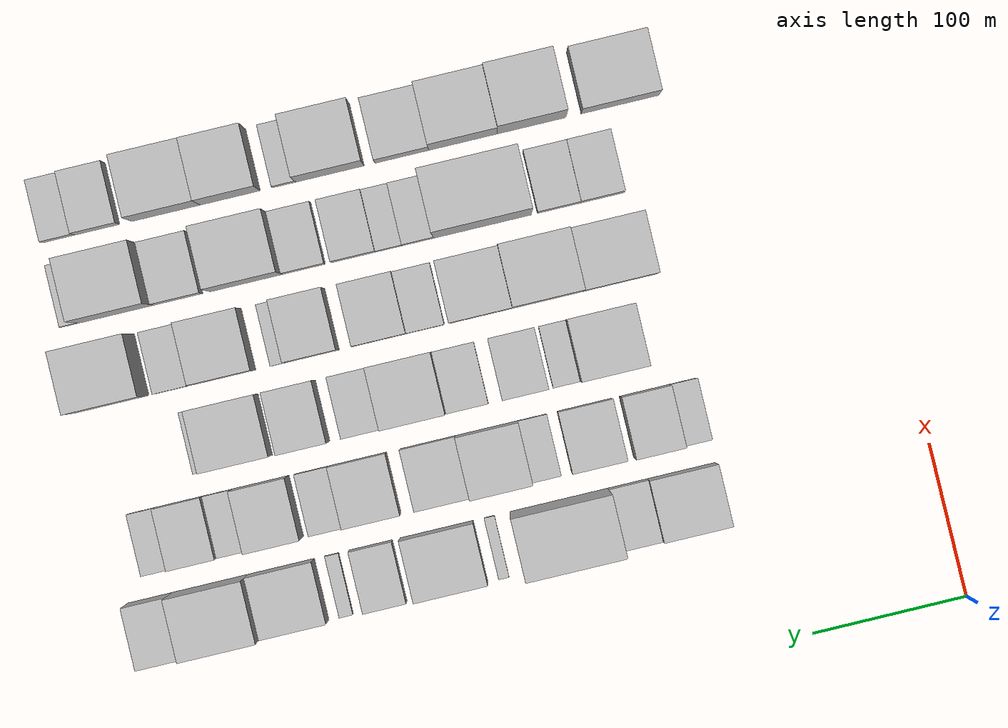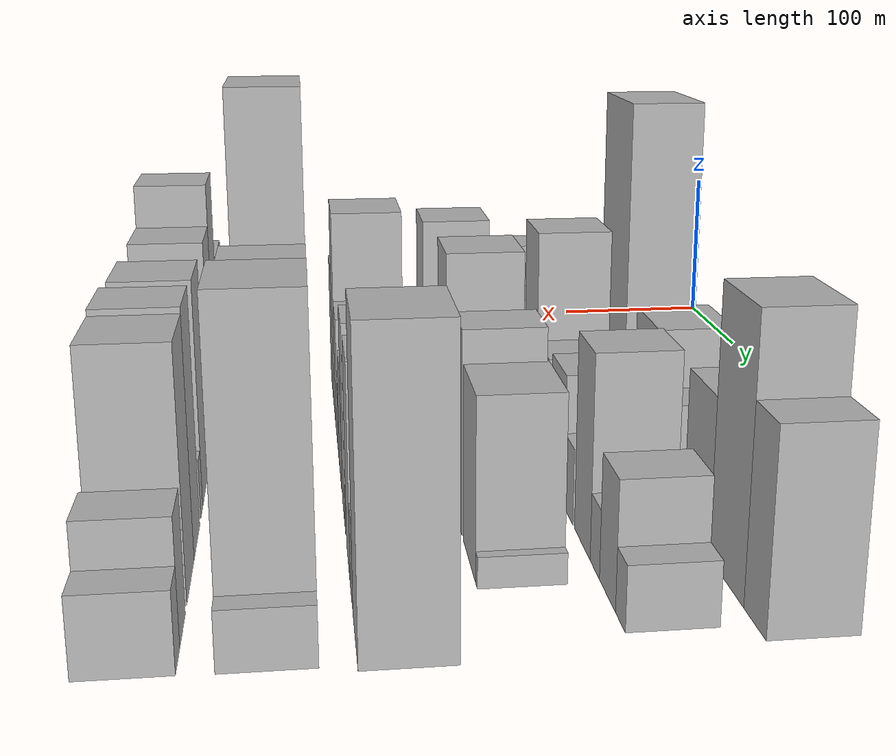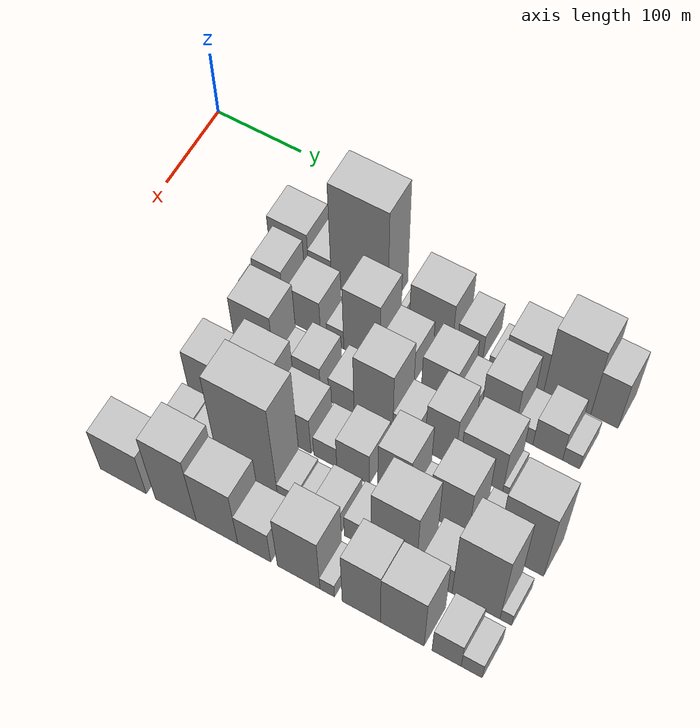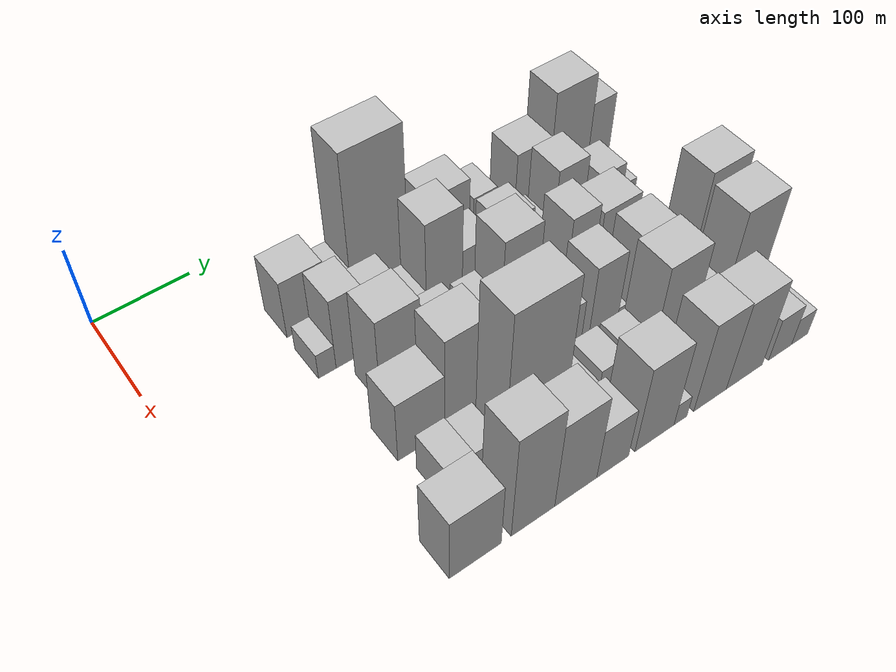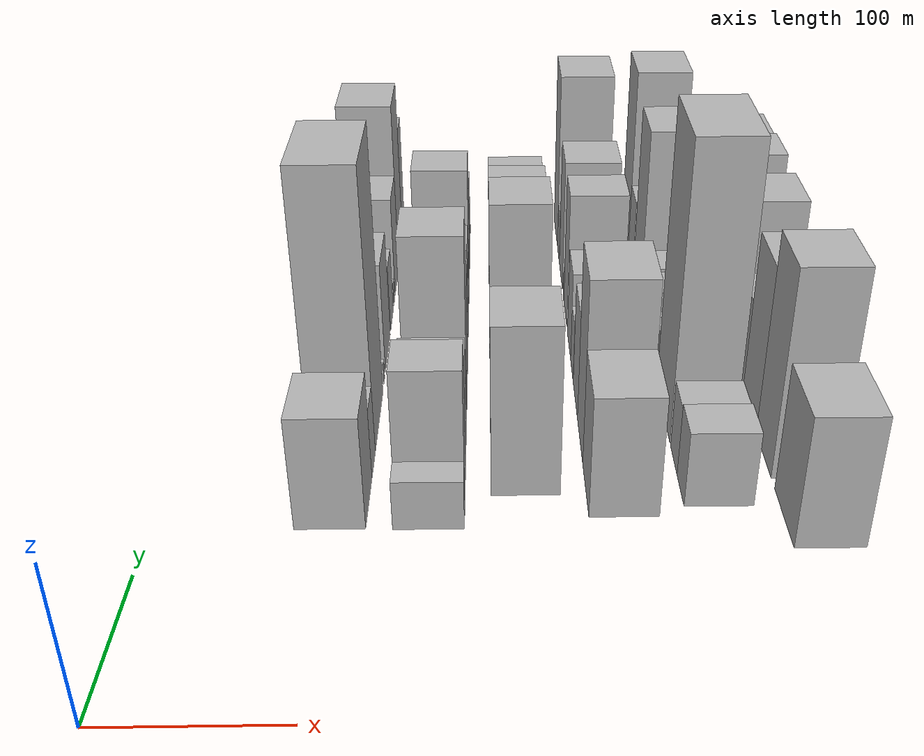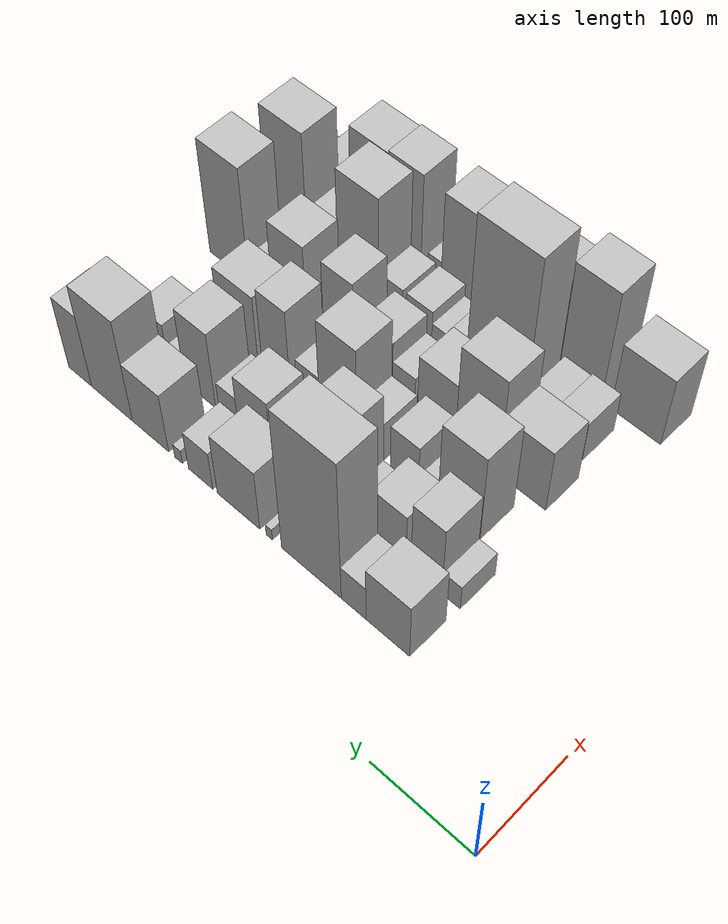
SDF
<sdf version="1.6">
 <world name="default">
  <model name="building_31">
   <static>1</static>
   <pose>100.0000 157.6466 0 0.000000 0.000000 0.000000</pose>
   <link name="link">
    <pose>0 0 37.50 0 0 0</pose>
    <collision name="collision"><geometry><box><size>40.0000 44.5112 75.0000</size></box></geometry></collision>
    <visual name="visual">
     <cast_shadows>0</cast_shadows>
     <geometry><box><size>40.0000 44.5112 75.0000</size></box></geometry>
     <material>
      <script>
       <uri>model://HANNAS_wall/materials/scripts</uri>
       <uri>model://HANNAS_wall/materials/textures</uri>
       <name>vrc/HANNAS_wall</name>
      </script>
     </material>
    </visual>
   </link>
  </model>
  <model name="building_32">
   <static>1</static>
   <pose>100.0000 192.7787 0 0.000000 0.000000 0.000000</pose>
   <link name="link">
    <pose>0 0 24.00 0 0 0</pose>
    <collision name="collision"><geometry><box><size>40.0000 25.7529 48.0000</size></box></geometry></collision>
    <visual name="visual">
     <cast_shadows>0</cast_shadows>
     <geometry><box><size>40.0000 25.7529 48.0000</size></box></geometry>
     <material>
      <script>
       <uri>model://HANNAS_wall/materials/scripts</uri>
       <uri>model://HANNAS_wall/materials/textures</uri>
       <name>vrc/HANNAS_wall</name>
      </script>
     </material>
    </visual>
   </link>
  </model>
  <model name="building_33">
   <static>1</static>
   <pose>100.0000 237.5757 0 0.000000 0.000000 0.000000</pose>
   <link name="link">
    <pose>0 0 94.50 0 0 0</pose>
    <collision name="collision"><geometry><box><size>40.0000 63.8411 189.0000</size></box></geometry></collision>
    <visual name="visual">
     <cast_shadows>0</cast_shadows>
     <geometry><box><size>40.0000 63.8411 189.0000</size></box></geometry>
     <material>
      <script>
       <uri>model://HANNAS_wall/materials/scripts</uri>
       <uri>model://HANNAS_wall/materials/textures</uri>
       <name>vrc/HANNAS_wall</name>
      </script>
     </material>
    </visual>
   </link>
  </model>
  <model name="building_34">
   <static>1</static>
   <pose>100.0000 282.9036 0 0.000000 0.000000 0.000000</pose>
   <link name="link">
    <pose>0 0 7.50 0 0 0</pose>
    <collision name="collision"><geometry><box><size>40.0000 6.8147 15.0000</size></box></geometry></collision>
    <visual name="visual">
     <cast_shadows>0</cast_shadows>
     <geometry><box><size>40.0000 6.8147 15.0000</size></box></geometry>
     <material>
      <script>
       <uri>model://HANNAS_wall/materials/scripts</uri>
       <uri>model://HANNAS_wall/materials/textures</uri>
       <name>vrc/HANNAS_wall</name>
      </script>
     </material>
    </visual>
   </link>
  </model>
  <model name="building_35">
   <static>1</static>
   <pose>100.0000 317.2166 0 0.000000 0.000000 0.000000</pose>
   <link name="link">
    <pose>0 0 40.50 0 0 0</pose>
    <collision name="collision"><geometry><box><size>40.0000 47.8113 81.0000</size></box></geometry></collision>
    <visual name="visual">
     <cast_shadows>0</cast_shadows>
     <geometry><box><size>40.0000 47.8113 81.0000</size></box></geometry>
     <material>
      <script>
       <uri>model://HANNAS_wall/materials/scripts</uri>
       <uri>model://HANNAS_wall/materials/textures</uri>
       <name>vrc/HANNAS_wall</name>
      </script>
     </material>
    </visual>
   </link>
  </model>
  <model name="building_36">
   <static>1</static>
   <pose>100.0000 360.1481 0 0.000000 0.000000 0.000000</pose>
   <link name="link">
    <pose>0 0 25.50 0 0 0</pose>
    <collision name="collision"><geometry><box><size>40.0000 28.0517 51.0000</size></box></geometry></collision>
    <visual name="visual">
     <cast_shadows>0</cast_shadows>
     <geometry><box><size>40.0000 28.0517 51.0000</size></box></geometry>
     <material>
      <script>
       <uri>model://HANNAS_wall/materials/scripts</uri>
       <uri>model://HANNAS_wall/materials/textures</uri>
       <name>vrc/HANNAS_wall</name>
      </script>
     </material>
    </visual>
   </link>
  </model>
  <model name="building_37">
   <static>1</static>
   <pose>100.0000 385.6458 0 0.000000 0.000000 0.000000</pose>
   <link name="link">
    <pose>0 0 9.00 0 0 0</pose>
    <collision name="collision"><geometry><box><size>40.0000 8.9437 18.0000</size></box></geometry></collision>
    <visual name="visual">
     <cast_shadows>0</cast_shadows>
     <geometry><box><size>40.0000 8.9437 18.0000</size></box></geometry>
     <material>
      <script>
       <uri>model://HANNAS_wall/materials/scripts</uri>
       <uri>model://HANNAS_wall/materials/textures</uri>
       <name>vrc/HANNAS_wall</name>
      </script>
     </material>
    </visual>
   </link>
  </model>
  <model name="building_38">
   <static>1</static>
   <pose>100.0000 418.6927 0 0.000000 0.000000 0.000000</pose>
   <link name="link">
    <pose>0 0 39.00 0 0 0</pose>
    <collision name="collision"><geometry><box><size>40.0000 43.1501 78.0000</size></box></geometry></collision>
    <visual name="visual">
     <cast_shadows>0</cast_shadows>
     <geometry><box><size>40.0000 43.1501 78.0000</size></box></geometry>
     <material>
      <script>
       <uri>model://HANNAS_wall/materials/scripts</uri>
       <uri>model://HANNAS_wall/materials/textures</uri>
       <name>vrc/HANNAS_wall</name>
      </script>
     </material>
    </visual>
   </link>
  </model>
  <model name="building_39">
   <static>1</static>
   <pose>100.0000 465.1550 0 0.000000 0.000000 0.000000</pose>
   <link name="link">
    <pose>0 0 66.00 0 0 0</pose>
    <collision name="collision"><geometry><box><size>40.0000 49.7746 132.0000</size></box></geometry></collision>
    <visual name="visual">
     <cast_shadows>0</cast_shadows>
     <geometry><box><size>40.0000 49.7746 132.0000</size></box></geometry>
     <material>
      <script>
       <uri>model://HANNAS_wall/materials/scripts</uri>
       <uri>model://HANNAS_wall/materials/textures</uri>
       <name>vrc/HANNAS_wall</name>
      </script>
     </material>
    </visual>
   </link>
  </model>
  <model name="building_40">
   <static>1</static>
   <pose>100.0000 504.3704 0 0.000000 0.000000 0.000000</pose>
   <link name="link">
    <pose>0 0 46.50 0 0 0</pose>
    <collision name="collision"><geometry><box><size>40.0000 28.6561 93.0000</size></box></geometry></collision>
    <visual name="visual">
     <cast_shadows>0</cast_shadows>
     <geometry><box><size>40.0000 28.6561 93.0000</size></box></geometry>
     <material>
      <script>
       <uri>model://HANNAS_wall/materials/scripts</uri>
       <uri>model://HANNAS_wall/materials/textures</uri>
       <name>vrc/HANNAS_wall</name>
      </script>
     </material>
    </visual>
   </link>
  </model>
  <model name="building_85">
   <static>1</static>
   <pose>155.0000 143.6181 0 0.000000 0.000000 0.000000</pose>
   <link name="link">
    <pose>0 0 16.50 0 0 0</pose>
    <collision name="collision"><geometry><box><size>40.0000 18.3962 33.0000</size></box></geometry></collision>
    <visual name="visual">
     <cast_shadows>0</cast_shadows>
     <geometry><box><size>40.0000 18.3962 33.0000</size></box></geometry>
     <material>
      <script>
       <uri>model://HANNAS_wall/materials/scripts</uri>
       <uri>model://HANNAS_wall/materials/textures</uri>
       <name>vrc/HANNAS_wall</name>
      </script>
     </material>
    </visual>
   </link>
  </model>
  <model name="building_86">
   <static>1</static>
   <pose>155.0000 168.8673 0 0.000000 0.000000 0.000000</pose>
   <link name="link">
    <pose>0 0 46.50 0 0 0</pose>
    <collision name="collision"><geometry><box><size>40.0000 32.1022 93.0000</size></box></geometry></collision>
    <visual name="visual">
     <cast_shadows>0</cast_shadows>
     <geometry><box><size>40.0000 32.1022 93.0000</size></box></geometry>
     <material>
      <script>
       <uri>model://HANNAS_wall/materials/scripts</uri>
       <uri>model://HANNAS_wall/materials/textures</uri>
       <name>vrc/HANNAS_wall</name>
      </script>
     </material>
    </visual>
   </link>
  </model>
  <model name="building_87">
   <static>1</static>
   <pose>155.0000 207.7030 0 0.000000 0.000000 0.000000</pose>
   <link name="link">
    <pose>0 0 34.50 0 0 0</pose>
    <collision name="collision"><geometry><box><size>40.0000 35.5692 69.0000</size></box></geometry></collision>
    <visual name="visual">
     <cast_shadows>0</cast_shadows>
     <geometry><box><size>40.0000 35.5692 69.0000</size></box></geometry>
     <material>
      <script>
       <uri>model://HANNAS_wall/materials/scripts</uri>
       <uri>model://HANNAS_wall/materials/textures</uri>
       <name>vrc/HANNAS_wall</name>
      </script>
     </material>
    </visual>
   </link>
  </model>
  <model name="building_88">
   <static>1</static>
   <pose>155.0000 241.8715 0 0.000000 0.000000 0.000000</pose>
   <link name="link">
    <pose>0 0 18.00 0 0 0</pose>
    <collision name="collision"><geometry><box><size>40.0000 18.7679 36.0000</size></box></geometry></collision>
    <visual name="visual">
     <cast_shadows>0</cast_shadows>
     <geometry><box><size>40.0000 18.7679 36.0000</size></box></geometry>
     <material>
      <script>
       <uri>model://HANNAS_wall/materials/scripts</uri>
       <uri>model://HANNAS_wall/materials/textures</uri>
       <name>vrc/HANNAS_wall</name>
      </script>
     </material>
    </visual>
   </link>
  </model>
  <model name="building_89">
   <static>1</static>
   <pose>155.0000 271.4831 0 0.000000 0.000000 0.000000</pose>
   <link name="link">
    <pose>0 0 61.50 0 0 0</pose>
    <collision name="collision"><geometry><box><size>40.0000 40.4552 123.0000</size></box></geometry></collision>
    <visual name="visual">
     <cast_shadows>0</cast_shadows>
     <geometry><box><size>40.0000 40.4552 123.0000</size></box></geometry>
     <material>
      <script>
       <uri>model://HANNAS_wall/materials/scripts</uri>
       <uri>model://HANNAS_wall/materials/textures</uri>
       <name>vrc/HANNAS_wall</name>
      </script>
     </material>
    </visual>
   </link>
  </model>
  <model name="building_90">
   <static>1</static>
   <pose>155.0000 309.7545 0 0.000000 0.000000 0.000000</pose>
   <link name="link">
    <pose>0 0 31.50 0 0 0</pose>
    <collision name="collision"><geometry><box><size>40.0000 36.0877 63.0000</size></box></geometry></collision>
    <visual name="visual">
     <cast_shadows>0</cast_shadows>
     <geometry><box><size>40.0000 36.0877 63.0000</size></box></geometry>
     <material>
      <script>
       <uri>model://HANNAS_wall/materials/scripts</uri>
       <uri>model://HANNAS_wall/materials/textures</uri>
       <name>vrc/HANNAS_wall</name>
      </script>
     </material>
    </visual>
   </link>
  </model>
  <model name="building_91">
   <static>1</static>
   <pose>155.0000 355.5986 0 0.000000 0.000000 0.000000</pose>
   <link name="link">
    <pose>0 0 34.50 0 0 0</pose>
    <collision name="collision"><geometry><box><size>40.0000 37.6006 69.0000</size></box></geometry></collision>
    <visual name="visual">
     <cast_shadows>0</cast_shadows>
     <geometry><box><size>40.0000 37.6006 69.0000</size></box></geometry>
     <material>
      <script>
       <uri>model://HANNAS_wall/materials/scripts</uri>
       <uri>model://HANNAS_wall/materials/textures</uri>
       <name>vrc/HANNAS_wall</name>
      </script>
     </material>
    </visual>
   </link>
  </model>
  <model name="building_92">
   <static>1</static>
   <pose>155.0000 385.4392 0 0.000000 0.000000 0.000000</pose>
   <link name="link">
    <pose>0 0 19.50 0 0 0</pose>
    <collision name="collision"><geometry><box><size>40.0000 22.0804 39.0000</size></box></geometry></collision>
    <visual name="visual">
     <cast_shadows>0</cast_shadows>
     <geometry><box><size>40.0000 22.0804 39.0000</size></box></geometry>
     <material>
      <script>
       <uri>model://HANNAS_wall/materials/scripts</uri>
       <uri>model://HANNAS_wall/materials/textures</uri>
       <name>vrc/HANNAS_wall</name>
      </script>
     </material>
    </visual>
   </link>
  </model>
  <model name="building_93">
   <static>1</static>
   <pose>155.0000 418.6025 0 0.000000 0.000000 0.000000</pose>
   <link name="link">
    <pose>0 0 49.50 0 0 0</pose>
    <collision name="collision"><geometry><box><size>40.0000 36.2463 99.0000</size></box></geometry></collision>
    <visual name="visual">
     <cast_shadows>0</cast_shadows>
     <geometry><box><size>40.0000 36.2463 99.0000</size></box></geometry>
     <material>
      <script>
       <uri>model://HANNAS_wall/materials/scripts</uri>
       <uri>model://HANNAS_wall/materials/textures</uri>
       <name>vrc/HANNAS_wall</name>
      </script>
     </material>
    </visual>
   </link>
  </model>
  <model name="building_94">
   <static>1</static>
   <pose>155.0000 446.5199 0 0.000000 0.000000 0.000000</pose>
   <link name="link">
    <pose>0 0 16.50 0 0 0</pose>
    <collision name="collision"><geometry><box><size>40.0000 19.5885 33.0000</size></box></geometry></collision>
    <visual name="visual">
     <cast_shadows>0</cast_shadows>
     <geometry><box><size>40.0000 19.5885 33.0000</size></box></geometry>
     <material>
      <script>
       <uri>model://HANNAS_wall/materials/scripts</uri>
       <uri>model://HANNAS_wall/materials/textures</uri>
       <name>vrc/HANNAS_wall</name>
      </script>
     </material>
    </visual>
   </link>
  </model>
  <model name="building_95">
   <static>1</static>
   <pose>155.0000 471.9669 0 0.000000 0.000000 0.000000</pose>
   <link name="link">
    <pose>0 0 30.00 0 0 0</pose>
    <collision name="collision"><geometry><box><size>40.0000 31.3054 60.0000</size></box></geometry></collision>
    <visual name="visual">
     <cast_shadows>0</cast_shadows>
     <geometry><box><size>40.0000 31.3054 60.0000</size></box></geometry>
     <material>
      <script>
       <uri>model://HANNAS_wall/materials/scripts</uri>
       <uri>model://HANNAS_wall/materials/textures</uri>
       <name>vrc/HANNAS_wall</name>
      </script>
     </material>
    </visual>
   </link>
  </model>
  <model name="building_96">
   <static>1</static>
   <pose>155.0000 496.5159 0 0.000000 0.000000 0.000000</pose>
   <link name="link">
    <pose>0 0 15.00 0 0 0</pose>
    <collision name="collision"><geometry><box><size>40.0000 17.7927 30.0000</size></box></geometry></collision>
    <visual name="visual">
     <cast_shadows>0</cast_shadows>
     <geometry><box><size>40.0000 17.7927 30.0000</size></box></geometry>
     <material>
      <script>
       <uri>model://HANNAS_wall/materials/scripts</uri>
       <uri>model://HANNAS_wall/materials/textures</uri>
       <name>vrc/HANNAS_wall</name>
      </script>
     </material>
    </visual>
   </link>
  </model>
  <model name="building_138">
   <static>1</static>
   <pose>210.0000 185.1023 0 0.000000 0.000000 0.000000</pose>
   <link name="link">
    <pose>0 0 57.00 0 0 0</pose>
    <collision name="collision"><geometry><box><size>40.0000 43.8802 114.0000</size></box></geometry></collision>
    <visual name="visual">
     <cast_shadows>0</cast_shadows>
     <geometry><box><size>40.0000 43.8802 114.0000</size></box></geometry>
     <material>
      <script>
       <uri>model://HANNAS_wall/materials/scripts</uri>
       <uri>model://HANNAS_wall/materials/textures</uri>
       <name>vrc/HANNAS_wall</name>
      </script>
     </material>
    </visual>
   </link>
  </model>
  <model name="building_139">
   <static>1</static>
   <pose>210.0000 215.8155 0 0.000000 0.000000 0.000000</pose>
   <link name="link">
    <pose>0 0 15.00 0 0 0</pose>
    <collision name="collision"><geometry><box><size>40.0000 17.5463 30.0000</size></box></geometry></collision>
    <visual name="visual">
     <cast_shadows>0</cast_shadows>
     <geometry><box><size>40.0000 17.5463 30.0000</size></box></geometry>
     <material>
      <script>
       <uri>model://HANNAS_wall/materials/scripts</uri>
       <uri>model://HANNAS_wall/materials/textures</uri>
       <name>vrc/HANNAS_wall</name>
      </script>
     </material>
    </visual>
   </link>
  </model>
  <model name="building_140">
   <static>1</static>
   <pose>210.0000 242.6481 0 0.000000 0.000000 0.000000</pose>
   <link name="link">
    <pose>0 0 30.00 0 0 0</pose>
    <collision name="collision"><geometry><box><size>40.0000 30.1188 60.0000</size></box></geometry></collision>
    <visual name="visual">
     <cast_shadows>0</cast_shadows>
     <geometry><box><size>40.0000 30.1188 60.0000</size></box></geometry>
     <material>
      <script>
       <uri>model://HANNAS_wall/materials/scripts</uri>
       <uri>model://HANNAS_wall/materials/textures</uri>
       <name>vrc/HANNAS_wall</name>
      </script>
     </material>
    </visual>
   </link>
  </model>
  <model name="building_141">
   <static>1</static>
   <pose>210.0000 280.3949 0 0.000000 0.000000 0.000000</pose>
   <link name="link">
    <pose>0 0 25.50 0 0 0</pose>
    <collision name="collision"><geometry><box><size>40.0000 27.3748 51.0000</size></box></geometry></collision>
    <visual name="visual">
     <cast_shadows>0</cast_shadows>
     <geometry><box><size>40.0000 27.3748 51.0000</size></box></geometry>
     <material>
      <script>
       <uri>model://HANNAS_wall/materials/scripts</uri>
       <uri>model://HANNAS_wall/materials/textures</uri>
       <name>vrc/HANNAS_wall</name>
      </script>
     </material>
    </visual>
   </link>
  </model>
  <model name="building_142">
   <static>1</static>
   <pose>210.0000 315.1085 0 0.000000 0.000000 0.000000</pose>
   <link name="link">
    <pose>0 0 61.50 0 0 0</pose>
    <collision name="collision"><geometry><box><size>40.0000 42.0525 123.0000</size></box></geometry></collision>
    <visual name="visual">
     <cast_shadows>0</cast_shadows>
     <geometry><box><size>40.0000 42.0525 123.0000</size></box></geometry>
     <material>
      <script>
       <uri>model://HANNAS_wall/materials/scripts</uri>
       <uri>model://HANNAS_wall/materials/textures</uri>
       <name>vrc/HANNAS_wall</name>
      </script>
     </material>
    </visual>
   </link>
  </model>
  <model name="building_143">
   <static>1</static>
   <pose>210.0000 349.1474 0 0.000000 0.000000 0.000000</pose>
   <link name="link">
    <pose>0 0 24.00 0 0 0</pose>
    <collision name="collision"><geometry><box><size>40.0000 26.0253 48.0000</size></box></geometry></collision>
    <visual name="visual">
     <cast_shadows>0</cast_shadows>
     <geometry><box><size>40.0000 26.0253 48.0000</size></box></geometry>
     <material>
      <script>
       <uri>model://HANNAS_wall/materials/scripts</uri>
       <uri>model://HANNAS_wall/materials/textures</uri>
       <name>vrc/HANNAS_wall</name>
      </script>
     </material>
    </visual>
   </link>
  </model>
  <model name="building_144">
   <static>1</static>
   <pose>210.0000 386.3830 0 0.000000 0.000000 0.000000</pose>
   <link name="link">
    <pose>0 0 51.00 0 0 0</pose>
    <collision name="collision"><geometry><box><size>40.0000 32.4458 102.0000</size></box></geometry></collision>
    <visual name="visual">
     <cast_shadows>0</cast_shadows>
     <geometry><box><size>40.0000 32.4458 102.0000</size></box></geometry>
     <material>
      <script>
       <uri>model://HANNAS_wall/materials/scripts</uri>
       <uri>model://HANNAS_wall/materials/textures</uri>
       <name>vrc/HANNAS_wall</name>
      </script>
     </material>
    </visual>
   </link>
  </model>
  <model name="building_145">
   <static>1</static>
   <pose>210.0000 430.3659 0 0.000000 0.000000 0.000000</pose>
   <link name="link">
    <pose>0 0 43.50 0 0 0</pose>
    <collision name="collision"><geometry><box><size>40.0000 45.5201 87.0000</size></box></geometry></collision>
    <visual name="visual">
     <cast_shadows>0</cast_shadows>
     <geometry><box><size>40.0000 45.5201 87.0000</size></box></geometry>
     <material>
      <script>
       <uri>model://HANNAS_wall/materials/scripts</uri>
       <uri>model://HANNAS_wall/materials/textures</uri>
       <name>vrc/HANNAS_wall</name>
      </script>
     </material>
    </visual>
   </link>
  </model>
  <model name="building_146">
   <static>1</static>
   <pose>210.0000 456.1896 0 0.000000 0.000000 0.000000</pose>
   <link name="link">
    <pose>0 0 7.50 0 0 0</pose>
    <collision name="collision"><geometry><box><size>40.0000 6.1273 15.0000</size></box></geometry></collision>
    <visual name="visual">
     <cast_shadows>0</cast_shadows>
     <geometry><box><size>40.0000 6.1273 15.0000</size></box></geometry>
     <material>
      <script>
       <uri>model://HANNAS_wall/materials/scripts</uri>
       <uri>model://HANNAS_wall/materials/textures</uri>
       <name>vrc/HANNAS_wall</name>
      </script>
     </material>
    </visual>
   </link>
  </model>
  <model name="building_188">
   <static>1</static>
   <pose>265.0000 167.4437 0 0.000000 0.000000 0.000000</pose>
   <link name="link">
    <pose>0 0 40.50 0 0 0</pose>
    <collision name="collision"><geometry><box><size>40.0000 48.4219 81.0000</size></box></geometry></collision>
    <visual name="visual">
     <cast_shadows>0</cast_shadows>
     <geometry><box><size>40.0000 48.4219 81.0000</size></box></geometry>
     <material>
      <script>
       <uri>model://HANNAS_wall/materials/scripts</uri>
       <uri>model://HANNAS_wall/materials/textures</uri>
       <name>vrc/HANNAS_wall</name>
      </script>
     </material>
    </visual>
   </link>
  </model>
  <model name="building_189">
   <static>1</static>
   <pose>265.0000 214.8882 0 0.000000 0.000000 0.000000</pose>
   <link name="link">
    <pose>0 0 63.00 0 0 0</pose>
    <collision name="collision"><geometry><box><size>40.0000 46.4670 126.0000</size></box></geometry></collision>
    <visual name="visual">
     <cast_shadows>0</cast_shadows>
     <geometry><box><size>40.0000 46.4670 126.0000</size></box></geometry>
     <material>
      <script>
       <uri>model://HANNAS_wall/materials/scripts</uri>
       <uri>model://HANNAS_wall/materials/textures</uri>
       <name>vrc/HANNAS_wall</name>
      </script>
     </material>
    </visual>
   </link>
  </model>
  <model name="building_190">
   <static>1</static>
   <pose>265.0000 258.6259 0 0.000000 0.000000 0.000000</pose>
   <link name="link">
    <pose>0 0 37.50 0 0 0</pose>
    <collision name="collision"><geometry><box><size>40.0000 41.0083 75.0000</size></box></geometry></collision>
    <visual name="visual">
     <cast_shadows>0</cast_shadows>
     <geometry><box><size>40.0000 41.0083 75.0000</size></box></geometry>
     <material>
      <script>
       <uri>model://HANNAS_wall/materials/scripts</uri>
       <uri>model://HANNAS_wall/materials/textures</uri>
       <name>vrc/HANNAS_wall</name>
      </script>
     </material>
    </visual>
   </link>
  </model>
  <model name="building_191">
   <static>1</static>
   <pose>265.0000 294.5161 0 0.000000 0.000000 0.000000</pose>
   <link name="link">
    <pose>0 0 21.00 0 0 0</pose>
    <collision name="collision"><geometry><box><size>40.0000 24.7722 42.0000</size></box></geometry></collision>
    <visual name="visual">
     <cast_shadows>0</cast_shadows>
     <geometry><box><size>40.0000 24.7722 42.0000</size></box></geometry>
     <material>
      <script>
       <uri>model://HANNAS_wall/materials/scripts</uri>
       <uri>model://HANNAS_wall/materials/textures</uri>
       <name>vrc/HANNAS_wall</name>
      </script>
     </material>
    </visual>
   </link>
  </model>
  <model name="building_192">
   <static>1</static>
   <pose>265.0000 324.4014 0 0.000000 0.000000 0.000000</pose>
   <link name="link">
    <pose>0 0 33.00 0 0 0</pose>
    <collision name="collision"><geometry><box><size>40.0000 34.9983 66.0000</size></box></geometry></collision>
    <visual name="visual">
     <cast_shadows>0</cast_shadows>
     <geometry><box><size>40.0000 34.9983 66.0000</size></box></geometry>
     <material>
      <script>
       <uri>model://HANNAS_wall/materials/scripts</uri>
       <uri>model://HANNAS_wall/materials/textures</uri>
       <name>vrc/HANNAS_wall</name>
      </script>
     </material>
    </visual>
   </link>
  </model>
  <model name="building_193">
   <static>1</static>
   <pose>265.0000 368.0734 0 0.000000 0.000000 0.000000</pose>
   <link name="link">
    <pose>0 0 51.00 0 0 0</pose>
    <collision name="collision"><geometry><box><size>40.0000 34.3457 102.0000</size></box></geometry></collision>
    <visual name="visual">
     <cast_shadows>0</cast_shadows>
     <geometry><box><size>40.0000 34.3457 102.0000</size></box></geometry>
     <material>
      <script>
       <uri>model://HANNAS_wall/materials/scripts</uri>
       <uri>model://HANNAS_wall/materials/textures</uri>
       <name>vrc/HANNAS_wall</name>
      </script>
     </material>
    </visual>
   </link>
  </model>
  <model name="building_194">
   <static>1</static>
   <pose>265.0000 390.3217 0 0.000000 0.000000 0.000000</pose>
   <link name="link">
    <pose>0 0 12.00 0 0 0</pose>
    <collision name="collision"><geometry><box><size>40.0000 10.1508 24.0000</size></box></geometry></collision>
    <visual name="visual">
     <cast_shadows>0</cast_shadows>
     <geometry><box><size>40.0000 10.1508 24.0000</size></box></geometry>
     <material>
      <script>
       <uri>model://HANNAS_wall/materials/scripts</uri>
       <uri>model://HANNAS_wall/materials/textures</uri>
       <name>vrc/HANNAS_wall</name>
      </script>
     </material>
    </visual>
   </link>
  </model>
  <model name="building_195">
   <static>1</static>
   <pose>265.0000 425.7424 0 0.000000 0.000000 0.000000</pose>
   <link name="link">
    <pose>0 0 51.00 0 0 0</pose>
    <collision name="collision"><geometry><box><size>40.0000 40.6906 102.0000</size></box></geometry></collision>
    <visual name="visual">
     <cast_shadows>0</cast_shadows>
     <geometry><box><size>40.0000 40.6906 102.0000</size></box></geometry>
     <material>
      <script>
       <uri>model://HANNAS_wall/materials/scripts</uri>
       <uri>model://HANNAS_wall/materials/textures</uri>
       <name>vrc/HANNAS_wall</name>
      </script>
     </material>
    </visual>
   </link>
  </model>
  <model name="building_196">
   <static>1</static>
   <pose>265.0000 460.1594 0 0.000000 0.000000 0.000000</pose>
   <link name="link">
    <pose>0 0 19.50 0 0 0</pose>
    <collision name="collision"><geometry><box><size>40.0000 22.1435 39.0000</size></box></geometry></collision>
    <visual name="visual">
     <cast_shadows>0</cast_shadows>
     <geometry><box><size>40.0000 22.1435 39.0000</size></box></geometry>
     <material>
      <script>
       <uri>model://HANNAS_wall/materials/scripts</uri>
       <uri>model://HANNAS_wall/materials/textures</uri>
       <name>vrc/HANNAS_wall</name>
      </script>
     </material>
    </visual>
   </link>
  </model>
  <model name="building_197">
   <static>1</static>
   <pose>265.0000 499.2651 0 0.000000 0.000000 0.000000</pose>
   <link name="link">
    <pose>0 0 70.50 0 0 0</pose>
    <collision name="collision"><geometry><box><size>40.0000 48.0678 141.0000</size></box></geometry></collision>
    <visual name="visual">
     <cast_shadows>0</cast_shadows>
     <geometry><box><size>40.0000 48.0678 141.0000</size></box></geometry>
     <material>
      <script>
       <uri>model://HANNAS_wall/materials/scripts</uri>
       <uri>model://HANNAS_wall/materials/textures</uri>
       <name>vrc/HANNAS_wall</name>
      </script>
     </material>
    </visual>
   </link>
  </model>
  <model name="building_242">
   <static>1</static>
   <pose>320.0000 165.9871 0 0.000000 0.000000 0.000000</pose>
   <link name="link">
    <pose>0 0 25.50 0 0 0</pose>
    <collision name="collision"><geometry><box><size>40.0000 28.5741 51.0000</size></box></geometry></collision>
    <visual name="visual">
     <cast_shadows>0</cast_shadows>
     <geometry><box><size>40.0000 28.5741 51.0000</size></box></geometry>
     <material>
      <script>
       <uri>model://HANNAS_wall/materials/scripts</uri>
       <uri>model://HANNAS_wall/materials/textures</uri>
       <name>vrc/HANNAS_wall</name>
      </script>
     </material>
    </visual>
   </link>
  </model>
  <model name="building_243">
   <static>1</static>
   <pose>320.0000 194.3372 0 0.000000 0.000000 0.000000</pose>
   <link name="link">
    <pose>0 0 24.00 0 0 0</pose>
    <collision name="collision"><geometry><box><size>40.0000 28.1262 48.0000</size></box></geometry></collision>
    <visual name="visual">
     <cast_shadows>0</cast_shadows>
     <geometry><box><size>40.0000 28.1262 48.0000</size></box></geometry>
     <material>
      <script>
       <uri>model://HANNAS_wall/materials/scripts</uri>
       <uri>model://HANNAS_wall/materials/textures</uri>
       <name>vrc/HANNAS_wall</name>
      </script>
     </material>
    </visual>
   </link>
  </model>
  <model name="building_244">
   <static>1</static>
   <pose>320.0000 244.2418 0 0.000000 0.000000 0.000000</pose>
   <link name="link">
    <pose>0 0 100.50 0 0 0</pose>
    <collision name="collision"><geometry><box><size>40.0000 63.6829 201.0000</size></box></geometry></collision>
    <visual name="visual">
     <cast_shadows>0</cast_shadows>
     <geometry><box><size>40.0000 63.6829 201.0000</size></box></geometry>
     <material>
      <script>
       <uri>model://HANNAS_wall/materials/scripts</uri>
       <uri>model://HANNAS_wall/materials/textures</uri>
       <name>vrc/HANNAS_wall</name>
      </script>
     </material>
    </visual>
   </link>
  </model>
  <model name="building_245">
   <static>1</static>
   <pose>320.0000 286.3993 0 0.000000 0.000000 0.000000</pose>
   <link name="link">
    <pose>0 0 19.50 0 0 0</pose>
    <collision name="collision"><geometry><box><size>40.0000 20.6322 39.0000</size></box></geometry></collision>
    <visual name="visual">
     <cast_shadows>0</cast_shadows>
     <geometry><box><size>40.0000 20.6322 39.0000</size></box></geometry>
     <material>
      <script>
       <uri>model://HANNAS_wall/materials/scripts</uri>
       <uri>model://HANNAS_wall/materials/textures</uri>
       <name>vrc/HANNAS_wall</name>
      </script>
     </material>
    </visual>
   </link>
  </model>
  <model name="building_246">
   <static>1</static>
   <pose>320.0000 305.3521 0 0.000000 0.000000 0.000000</pose>
   <link name="link">
    <pose>0 0 16.50 0 0 0</pose>
    <collision name="collision"><geometry><box><size>40.0000 17.2734 33.0000</size></box></geometry></collision>
    <visual name="visual">
     <cast_shadows>0</cast_shadows>
     <geometry><box><size>40.0000 17.2734 33.0000</size></box></geometry>
     <material>
      <script>
       <uri>model://HANNAS_wall/materials/scripts</uri>
       <uri>model://HANNAS_wall/materials/textures</uri>
       <name>vrc/HANNAS_wall</name>
      </script>
     </material>
    </visual>
   </link>
  </model>
  <model name="building_247">
   <static>1</static>
   <pose>320.0000 328.3845 0 0.000000 0.000000 0.000000</pose>
   <link name="link">
    <pose>0 0 24.00 0 0 0</pose>
    <collision name="collision"><geometry><box><size>40.0000 28.7913 48.0000</size></box></geometry></collision>
    <visual name="visual">
     <cast_shadows>0</cast_shadows>
     <geometry><box><size>40.0000 28.7913 48.0000</size></box></geometry>
     <material>
      <script>
       <uri>model://HANNAS_wall/materials/scripts</uri>
       <uri>model://HANNAS_wall/materials/textures</uri>
       <name>vrc/HANNAS_wall</name>
      </script>
     </material>
    </visual>
   </link>
  </model>
  <model name="building_248">
   <static>1</static>
   <pose>320.0000 360.7793 0 0.000000 0.000000 0.000000</pose>
   <link name="link">
    <pose>0 0 24.00 0 0 0</pose>
    <collision name="collision"><geometry><box><size>40.0000 27.9983 48.0000</size></box></geometry></collision>
    <visual name="visual">
     <cast_shadows>0</cast_shadows>
     <geometry><box><size>40.0000 27.9983 48.0000</size></box></geometry>
     <material>
      <script>
       <uri>model://HANNAS_wall/materials/scripts</uri>
       <uri>model://HANNAS_wall/materials/textures</uri>
       <name>vrc/HANNAS_wall</name>
      </script>
     </material>
    </visual>
   </link>
  </model>
  <model name="building_249">
   <static>1</static>
   <pose>320.0000 398.3082 0 0.000000 0.000000 0.000000</pose>
   <link name="link">
    <pose>0 0 69.00 0 0 0</pose>
    <collision name="collision"><geometry><box><size>40.0000 47.0595 138.0000</size></box></geometry></collision>
    <visual name="visual">
     <cast_shadows>0</cast_shadows>
     <geometry><box><size>40.0000 47.0595 138.0000</size></box></geometry>
     <material>
      <script>
       <uri>model://HANNAS_wall/materials/scripts</uri>
       <uri>model://HANNAS_wall/materials/textures</uri>
       <name>vrc/HANNAS_wall</name>
      </script>
     </material>
    </visual>
   </link>
  </model>
  <model name="building_250">
   <static>1</static>
   <pose>320.0000 442.7230 0 0.000000 0.000000 0.000000</pose>
   <link name="link">
    <pose>0 0 30.00 0 0 0</pose>
    <collision name="collision"><geometry><box><size>40.0000 31.7700 60.0000</size></box></geometry></collision>
    <visual name="visual">
     <cast_shadows>0</cast_shadows>
     <geometry><box><size>40.0000 31.7700 60.0000</size></box></geometry>
     <material>
      <script>
       <uri>model://HANNAS_wall/materials/scripts</uri>
       <uri>model://HANNAS_wall/materials/textures</uri>
       <name>vrc/HANNAS_wall</name>
      </script>
     </material>
    </visual>
   </link>
  </model>
  <model name="building_251">
   <static>1</static>
   <pose>320.0000 482.9333 0 0.000000 0.000000 0.000000</pose>
   <link name="link">
    <pose>0 0 75.00 0 0 0</pose>
    <collision name="collision"><geometry><box><size>40.0000 48.6507 150.0000</size></box></geometry></collision>
    <visual name="visual">
     <cast_shadows>0</cast_shadows>
     <geometry><box><size>40.0000 48.6507 150.0000</size></box></geometry>
     <material>
      <script>
       <uri>model://HANNAS_wall/materials/scripts</uri>
       <uri>model://HANNAS_wall/materials/textures</uri>
       <name>vrc/HANNAS_wall</name>
      </script>
     </material>
    </visual>
   </link>
  </model>
  <model name="building_252">
   <static>1</static>
   <pose>320.0000 513.1672 0 0.000000 0.000000 0.000000</pose>
   <link name="link">
    <pose>0 0 13.50 0 0 0</pose>
    <collision name="collision"><geometry><box><size>40.0000 11.8172 27.0000</size></box></geometry></collision>
    <visual name="visual">
     <cast_shadows>0</cast_shadows>
     <geometry><box><size>40.0000 11.8172 27.0000</size></box></geometry>
     <material>
      <script>
       <uri>model://HANNAS_wall/materials/scripts</uri>
       <uri>model://HANNAS_wall/materials/textures</uri>
       <name>vrc/HANNAS_wall</name>
      </script>
     </material>
    </visual>
   </link>
  </model>
  <model name="building_291">
   <static>1</static>
   <pose>375.0000 141.1642 0 0.000000 0.000000 0.000000</pose>
   <link name="link">
    <pose>0 0 43.50 0 0 0</pose>
    <collision name="collision"><geometry><box><size>40.0000 50.9724 87.0000</size></box></geometry></collision>
    <visual name="visual">
     <cast_shadows>0</cast_shadows>
     <geometry><box><size>40.0000 50.9724 87.0000</size></box></geometry>
     <material>
      <script>
       <uri>model://HANNAS_wall/materials/scripts</uri>
       <uri>model://HANNAS_wall/materials/textures</uri>
       <name>vrc/HANNAS_wall</name>
      </script>
     </material>
    </visual>
   </link>
  </model>
  <model name="building_292">
   <static>1</static>
   <pose>375.0000 199.0150 0 0.000000 0.000000 0.000000</pose>
   <link name="link">
    <pose>0 0 70.50 0 0 0</pose>
    <collision name="collision"><geometry><box><size>40.0000 44.7294 141.0000</size></box></geometry></collision>
    <visual name="visual">
     <cast_shadows>0</cast_shadows>
     <geometry><box><size>40.0000 44.7294 141.0000</size></box></geometry>
     <material>
      <script>
       <uri>model://HANNAS_wall/materials/scripts</uri>
       <uri>model://HANNAS_wall/materials/textures</uri>
       <name>vrc/HANNAS_wall</name>
      </script>
     </material>
    </visual>
   </link>
  </model>
  <model name="building_293">
   <static>1</static>
   <pose>375.0000 243.7819 0 0.000000 0.000000 0.000000</pose>
   <link name="link">
    <pose>0 0 58.50 0 0 0</pose>
    <collision name="collision"><geometry><box><size>40.0000 44.8044 117.0000</size></box></geometry></collision>
    <visual name="visual">
     <cast_shadows>0</cast_shadows>
     <geometry><box><size>40.0000 44.8044 117.0000</size></box></geometry>
     <material>
      <script>
       <uri>model://HANNAS_wall/materials/scripts</uri>
       <uri>model://HANNAS_wall/materials/textures</uri>
       <name>vrc/HANNAS_wall</name>
      </script>
     </material>
    </visual>
   </link>
  </model>
  <model name="building_294">
   <static>1</static>
   <pose>375.0000 283.7321 0 0.000000 0.000000 0.000000</pose>
   <link name="link">
    <pose>0 0 34.50 0 0 0</pose>
    <collision name="collision"><geometry><box><size>40.0000 35.0960 69.0000</size></box></geometry></collision>
    <visual name="visual">
     <cast_shadows>0</cast_shadows>
     <geometry><box><size>40.0000 35.0960 69.0000</size></box></geometry>
     <material>
      <script>
       <uri>model://HANNAS_wall/materials/scripts</uri>
       <uri>model://HANNAS_wall/materials/textures</uri>
       <name>vrc/HANNAS_wall</name>
      </script>
     </material>
    </visual>
   </link>
  </model>
  <model name="building_295">
   <static>1</static>
   <pose>375.0000 330.6431 0 0.000000 0.000000 0.000000</pose>
   <link name="link">
    <pose>0 0 58.50 0 0 0</pose>
    <collision name="collision"><geometry><box><size>40.0000 44.7260 117.0000</size></box></geometry></collision>
    <visual name="visual">
     <cast_shadows>0</cast_shadows>
     <geometry><box><size>40.0000 44.7260 117.0000</size></box></geometry>
     <material>
      <script>
       <uri>model://HANNAS_wall/materials/scripts</uri>
       <uri>model://HANNAS_wall/materials/textures</uri>
       <name>vrc/HANNAS_wall</name>
      </script>
     </material>
    </visual>
   </link>
  </model>
  <model name="building_296">
   <static>1</static>
   <pose>375.0000 360.5900 0 0.000000 0.000000 0.000000</pose>
   <link name="link">
    <pose>0 0 15.00 0 0 0</pose>
    <collision name="collision"><geometry><box><size>40.0000 15.1677 30.0000</size></box></geometry></collision>
    <visual name="visual">
     <cast_shadows>0</cast_shadows>
     <geometry><box><size>40.0000 15.1677 30.0000</size></box></geometry>
     <material>
      <script>
       <uri>model://HANNAS_wall/materials/scripts</uri>
       <uri>model://HANNAS_wall/materials/textures</uri>
       <name>vrc/HANNAS_wall</name>
      </script>
     </material>
    </visual>
   </link>
  </model>
  <model name="building_297">
   <static>1</static>
   <pose>375.0000 395.7974 0 0.000000 0.000000 0.000000</pose>
   <link name="link">
    <pose>0 0 60.00 0 0 0</pose>
    <collision name="collision"><geometry><box><size>40.0000 39.2471 120.0000</size></box></geometry></collision>
    <visual name="visual">
     <cast_shadows>0</cast_shadows>
     <geometry><box><size>40.0000 39.2471 120.0000</size></box></geometry>
     <material>
      <script>
       <uri>model://HANNAS_wall/materials/scripts</uri>
       <uri>model://HANNAS_wall/materials/textures</uri>
       <name>vrc/HANNAS_wall</name>
      </script>
     </material>
    </visual>
   </link>
  </model>
  <model name="building_298">
   <static>1</static>
   <pose>375.0000 437.7098 0 0.000000 0.000000 0.000000</pose>
   <link name="link">
    <pose>0 0 58.50 0 0 0</pose>
    <collision name="collision"><geometry><box><size>40.0000 44.5776 117.0000</size></box></geometry></collision>
    <visual name="visual">
     <cast_shadows>0</cast_shadows>
     <geometry><box><size>40.0000 44.5776 117.0000</size></box></geometry>
     <material>
      <script>
       <uri>model://HANNAS_wall/materials/scripts</uri>
       <uri>model://HANNAS_wall/materials/textures</uri>
       <name>vrc/HANNAS_wall</name>
      </script>
     </material>
    </visual>
   </link>
  </model>
  <model name="building_299">
   <static>1</static>
   <pose>375.0000 482.6300 0 0.000000 0.000000 0.000000</pose>
   <link name="link">
    <pose>0 0 28.50 0 0 0</pose>
    <collision name="collision"><geometry><box><size>40.0000 29.2628 57.0000</size></box></geometry></collision>
    <visual name="visual">
     <cast_shadows>0</cast_shadows>
     <geometry><box><size>40.0000 29.2628 57.0000</size></box></geometry>
     <material>
      <script>
       <uri>model://HANNAS_wall/materials/scripts</uri>
       <uri>model://HANNAS_wall/materials/textures</uri>
       <name>vrc/HANNAS_wall</name>
      </script>
     </material>
    </visual>
   </link>
  </model>
  <model name="building_300">
   <static>1</static>
   <pose>375.0000 507.7999 0 0.000000 0.000000 0.000000</pose>
   <link name="link">
    <pose>0 0 18.00 0 0 0</pose>
    <collision name="collision"><geometry><box><size>40.0000 21.0769 36.0000</size></box></geometry></collision>
    <visual name="visual">
     <cast_shadows>0</cast_shadows>
     <geometry><box><size>40.0000 21.0769 36.0000</size></box></geometry>
     <material>
      <script>
       <uri>model://HANNAS_wall/materials/scripts</uri>
       <uri>model://HANNAS_wall/materials/textures</uri>
       <name>vrc/HANNAS_wall</name>
      </script>
     </material>
    </visual>
   </link>
  </model>
 </world>
</sdf>
